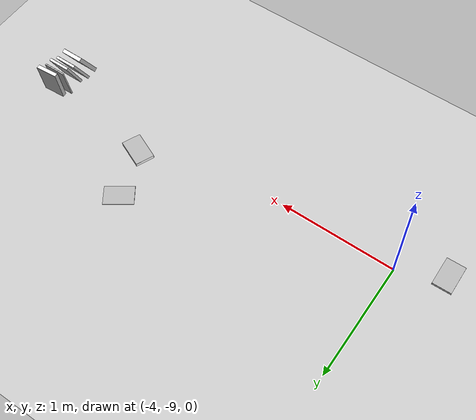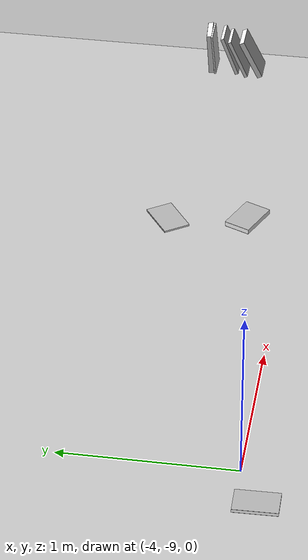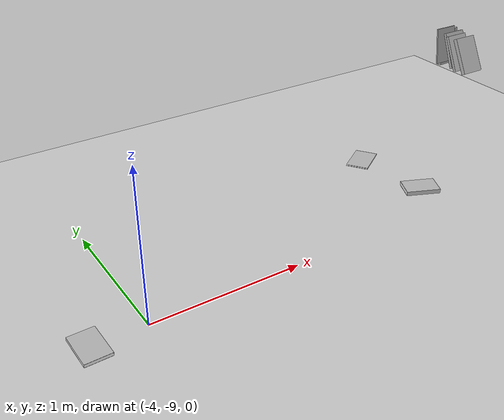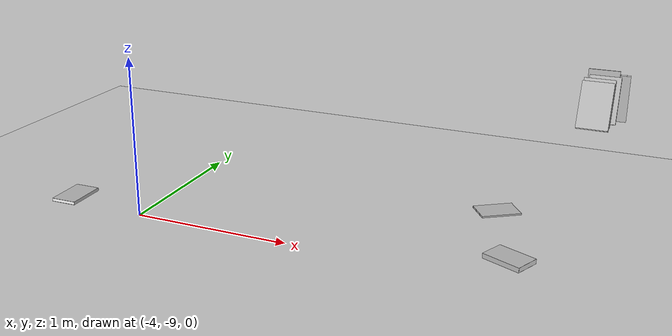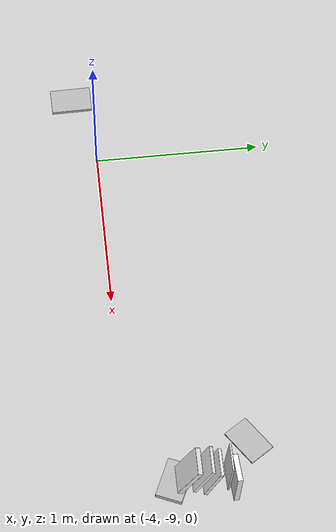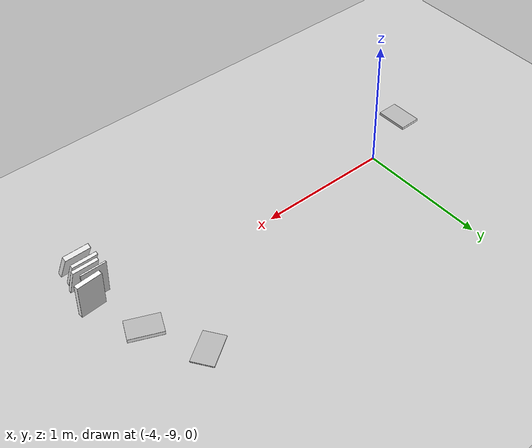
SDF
<sdf version="1.6">
 <world name="default">
  <model name="ground_plane">
   <static>1</static>
   <link name="link">
    <collision name="collision">
     <geometry><plane><normal>0 0 1</normal><size>100 100</size></plane></geometry>
     <surface><friction><ode><mu>1</mu><mu2>1</mu2></ode></friction></surface>
    </collision>
    <visual name="visual">
     <cast_shadows>0</cast_shadows>
     <geometry><plane><normal>0 0 1</normal><size>100 100</size></plane></geometry>
     <material>
      <script><uri>file://media/materials/scripts/gazebo.material</uri><name>Gazebo/Grey</name></script>
     </material>
    </visual>
    <velocity_decay><linear>0</linear><angular>0</angular></velocity_decay>
   </link>
  </model>
  <model name="book_20">
   <link name="cover">
    <pose>0 -0.000108 0.015405 0 -0 0</pose>
    <visual name="visual">
     <geometry><box><size>0.245 0.16 0.03</size></box></geometry>
     <material>
      <script>
       <uri>model://dataset_1/book_20/materials/scripts</uri>
       <uri>model://dataset_1/book_20/materials/textures</uri>
       <name>book_20</name>
      </script>
     </material>
    </visual>
    <collision name="collision"><geometry><box><size>0.245 0.16 0.03</size></box></geometry></collision>
   </link>
   <link name="page">
    <pose>0 0.000608 0.015405 0 -0 0</pose>
    <visual name="visual">
     <geometry><box><size>0.24502 0.15862 0.028</size></box></geometry>
     <material>
      <lighting>1</lighting>
      <ambient>1 1 1 1</ambient>
      <diffuse>1 1 1 1</diffuse>
      <specular>0.01 0.01 0.01 1</specular>
      <emissive>0 0 0 1</emissive>
      <shader type="vertex"><normal_map>__default__</normal_map></shader>
     </material>
    </visual>
    <collision name="collision"><geometry><box><size>0.245 0.16 0.03</size></box></geometry></collision>
   </link>
   <static>1</static>
   <pose>-1.33514 -8.47354 0.933303 -3.1415 -1.50452 1.64295</pose>
  </model>
  <model name="book_3">
   <link name="cover">
    <pose>0 -0.000108 0.01 0 -0 0</pose>
    <visual name="visual">
     <geometry><box><size>0.245 0.16 0.02</size></box></geometry>
     <material>
      <script>
       <uri>model://dataset_1/book_3/materials/scripts</uri>
       <uri>model://dataset_1/book_3/materials/textures</uri>
       <name>book_3</name>
      </script>
     </material>
    </visual>
    <collision name="collision"><geometry><box><size>0.245 0.16 0.02</size></box></geometry></collision>
   </link>
   <link name="page">
    <pose>0 0.000608 0.01 0 -0 0</pose>
    <visual name="visual">
     <geometry><box><size>0.24502 0.15862 0.018</size></box></geometry>
     <material>
      <lighting>1</lighting>
      <ambient>1 1 1 1</ambient>
      <diffuse>1 1 1 1</diffuse>
      <specular>0.01 0.01 0.01 1</specular>
      <emissive>0 0 0 1</emissive>
      <shader type="vertex"><normal_map>__default__</normal_map></shader>
     </material>
    </visual>
    <collision name="collision"><geometry><box><size>0.245 0.16 0.018</size></box></geometry></collision>
   </link>
   <static>1</static>
   <pose>-1.37287 -8.59003 0.954428 -3.1394 -1.1994 1.56955</pose>
  </model>
  <model name="book_9">
   <link name="cover">
    <pose>0 -0.000108 0.005 0 -0 0</pose>
    <visual name="visual">
     <geometry><box><size>0.245 0.16 0.01</size></box></geometry>
     <material>
      <script>
       <uri>model://dataset_1/book_9/materials/scripts</uri>
       <uri>model://dataset_1/book_9/materials/textures</uri>
       <name>book_9</name>
      </script>
     </material>
    </visual>
    <collision name="collision"><geometry><box><size>0.245 0.16 0.01</size></box></geometry></collision>
   </link>
   <link name="page">
    <pose>0 0.000608 0.005 0 -0 0</pose>
    <visual name="visual">
     <geometry><box><size>0.24502 0.15862 0.008</size></box></geometry>
     <material>
      <lighting>1</lighting>
      <ambient>1 1 1 1</ambient>
      <diffuse>1 1 1 1</diffuse>
      <specular>0.01 0.01 0.01 1</specular>
      <emissive>0 0 0 1</emissive>
      <shader type="vertex"><normal_map>__default__</normal_map></shader>
     </material>
    </visual>
    <collision name="collision"><geometry><box><size>0.245 0.16 0.008</size></box></geometry></collision>
   </link>
   <static>1</static>
   <pose>-1.38819 -8.49338 0.960616 -3.13349 -1.47234 1.57155</pose>
  </model>
  <model name="book_13">
   <link name="cover">
    <pose>0 -0.000108 0.015405 0 -0 0</pose>
    <visual name="visual">
     <geometry><box><size>0.245 0.16 0.03</size></box></geometry>
     <material>
      <script>
       <uri>model://dataset_1/book_13/materials/scripts</uri>
       <uri>model://dataset_1/book_13/materials/textures</uri>
       <name>book_13</name>
      </script>
     </material>
    </visual>
    <collision name="collision"><geometry><box><size>0.245 0.16 0.03</size></box></geometry></collision>
   </link>
   <link name="page">
    <pose>0 0.000608 0.015405 0 -0 0</pose>
    <visual name="visual">
     <geometry><box><size>0.24502 0.15862 0.028</size></box></geometry>
     <material>
      <lighting>1</lighting>
      <ambient>1 1 1 1</ambient>
      <diffuse>1 1 1 1</diffuse>
      <specular>0.01 0.01 0.01 1</specular>
      <emissive>0 0 0 1</emissive>
      <shader type="vertex"><normal_map>__default__</normal_map></shader>
     </material>
    </visual>
    <collision name="collision"><geometry><box><size>0.245 0.16 0.03</size></box></geometry></collision>
   </link>
   <static>1</static>
   <pose>-1.3923 -8.72149 0.9569 -3.13982 -1.10393 1.57001</pose>
  </model>
  <model name="book_6">
   <link name="cover">
    <pose>0 -0.000108 0.01 0 -0 0</pose>
    <visual name="visual">
     <geometry><box><size>0.245 0.16 0.02</size></box></geometry>
     <material>
      <script>
       <uri>model://dataset_1/book_6/materials/scripts</uri>
       <uri>model://dataset_1/book_6/materials/textures</uri>
       <name>book_6</name>
      </script>
     </material>
    </visual>
    <collision name="collision"><geometry><box><size>0.245 0.16 0.02</size></box></geometry></collision>
   </link>
   <link name="page">
    <pose>0 0.000608 0.01 0 -0 0</pose>
    <visual name="visual">
     <geometry><box><size>0.24502 0.15862 0.018</size></box></geometry>
     <material>
      <lighting>1</lighting>
      <ambient>1 1 1 1</ambient>
      <diffuse>1 1 1 1</diffuse>
      <specular>0.01 0.01 0.01 1</specular>
      <emissive>0 0 0 1</emissive>
      <shader type="vertex"><normal_map>__default__</normal_map></shader>
     </material>
    </visual>
    <collision name="collision"><geometry><box><size>0.245 0.16 0.018</size></box></geometry></collision>
   </link>
   <static>1</static>
   <pose>-1.39435 -8.64079 0.950904 -3.13966 -1.14492 1.56984</pose>
  </model>
  <model name="book_6_0">
   <link name="cover">
    <pose>0 -0.000108 0.01 0 -0 0</pose>
    <visual name="visual">
     <geometry><box><size>0.245 0.16 0.02</size></box></geometry>
     <material>
      <script>
       <uri>model://dataset_1/book_6/materials/scripts</uri>
       <uri>model://dataset_1/book_6/materials/textures</uri>
       <name>book_6</name>
      </script>
     </material>
    </visual>
    <collision name="collision"><geometry><box><size>0.245 0.16 0.02</size></box></geometry></collision>
   </link>
   <link name="page">
    <pose>0 0.000608 0.01 0 -0 0</pose>
    <visual name="visual">
     <geometry><box><size>0.24502 0.15862 0.018</size></box></geometry>
     <material>
      <lighting>1</lighting>
      <ambient>1 1 1 1</ambient>
      <diffuse>1 1 1 1</diffuse>
      <specular>0.01 0.01 0.01 1</specular>
      <emissive>0 0 0 1</emissive>
      <shader type="vertex"><normal_map>__default__</normal_map></shader>
     </material>
    </visual>
    <collision name="collision"><geometry><box><size>0.245 0.16 0.018</size></box></geometry></collision>
   </link>
   <static>1</static>
   <pose>-4.37689 -9.12673 0.113948 0 -0 1.58993</pose>
  </model>
  <model name="book_17_0">
   <link name="cover">
    <pose>0 -0.000108 0.015405 0 -0 0</pose>
    <visual name="visual">
     <geometry><box><size>0.245 0.16 0.03</size></box></geometry>
     <material>
      <script>
       <uri>model://dataset_1/book_17/materials/scripts</uri>
       <uri>model://dataset_1/book_17/materials/textures</uri>
       <name>book_17</name>
      </script>
     </material>
    </visual>
    <collision name="collision"><geometry><box><size>0.245 0.16 0.03</size></box></geometry></collision>
   </link>
   <link name="page">
    <pose>0 0.000608 0.015405 0 -0 0</pose>
    <visual name="visual">
     <geometry><box><size>0.24502 0.15862 0.028</size></box></geometry>
     <material>
      <lighting>1</lighting>
      <ambient>1 1 1 1</ambient>
      <diffuse>1 1 1 1</diffuse>
      <specular>0.01 0.01 0.01 1</specular>
      <emissive>0 0 0 1</emissive>
      <shader type="vertex"><normal_map>__default__</normal_map></shader>
     </material>
    </visual>
    <collision name="collision"><geometry><box><size>0.245 0.16 0.03</size></box></geometry></collision>
   </link>
   <static>1</static>
   <pose>-1.75665 -8.74352 0.022868 0 0 -0.413172</pose>
  </model>
  <model name="book_9_0">
   <link name="cover">
    <pose>0 -0.000108 0.005 0 -0 0</pose>
    <visual name="visual">
     <geometry><box><size>0.245 0.16 0.01</size></box></geometry>
     <material>
      <script>
       <uri>model://dataset_1/book_9/materials/scripts</uri>
       <uri>model://dataset_1/book_9/materials/textures</uri>
       <name>book_9</name>
      </script>
     </material>
    </visual>
    <collision name="collision"><geometry><box><size>0.245 0.16 0.01</size></box></geometry></collision>
   </link>
   <link name="page">
    <pose>0 0.000608 0.005 0 -0 0</pose>
    <visual name="visual">
     <geometry><box><size>0.24502 0.15862 0.008</size></box></geometry>
     <material>
      <lighting>1</lighting>
      <ambient>1 1 1 1</ambient>
      <diffuse>1 1 1 1</diffuse>
      <specular>0.01 0.01 0.01 1</specular>
      <emissive>0 0 0 1</emissive>
      <shader type="vertex"><normal_map>__default__</normal_map></shader>
     </material>
    </visual>
    <collision name="collision"><geometry><box><size>0.245 0.16 0.008</size></box></geometry></collision>
   </link>
   <static>1</static>
   <pose>-1.93488 -8.29552 0.109362 0 -0 0.600175</pose>
  </model>
 </world>
</sdf>
